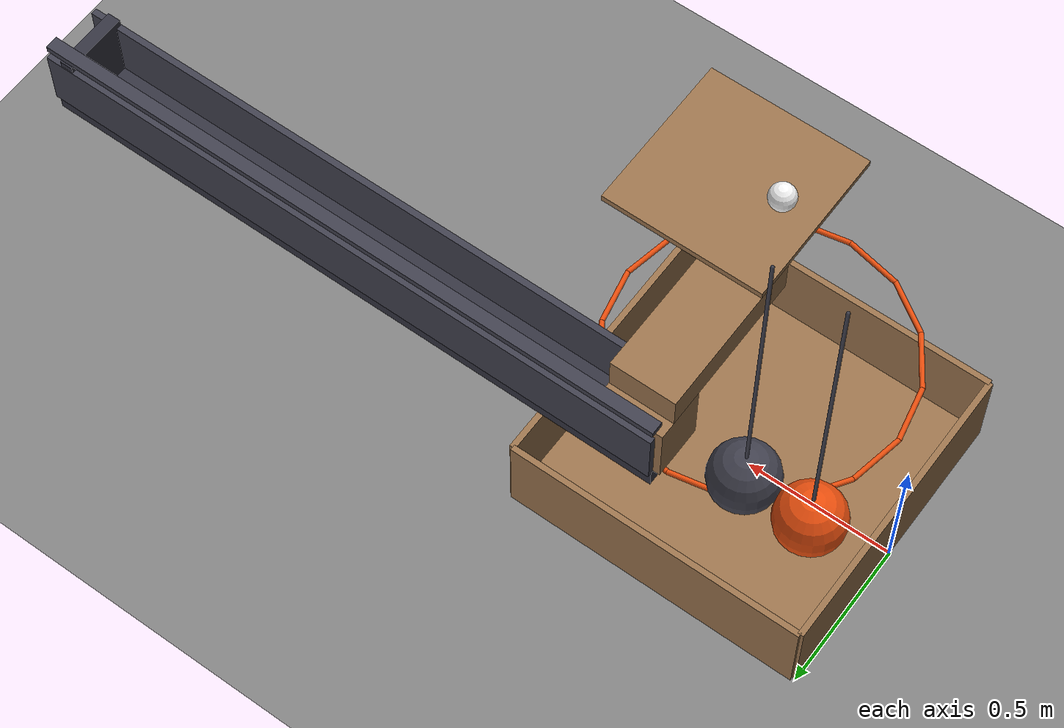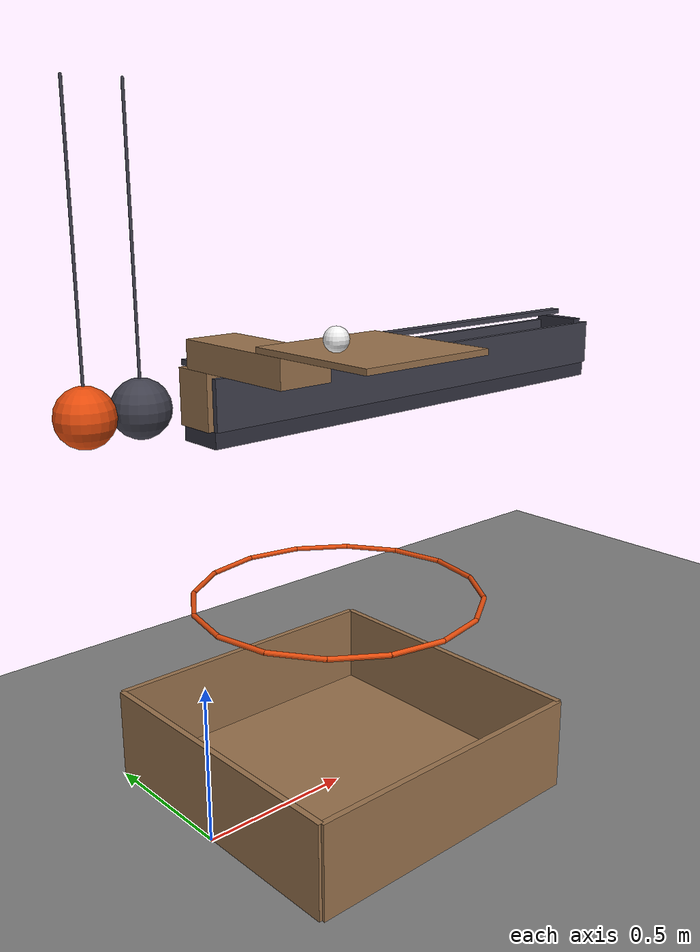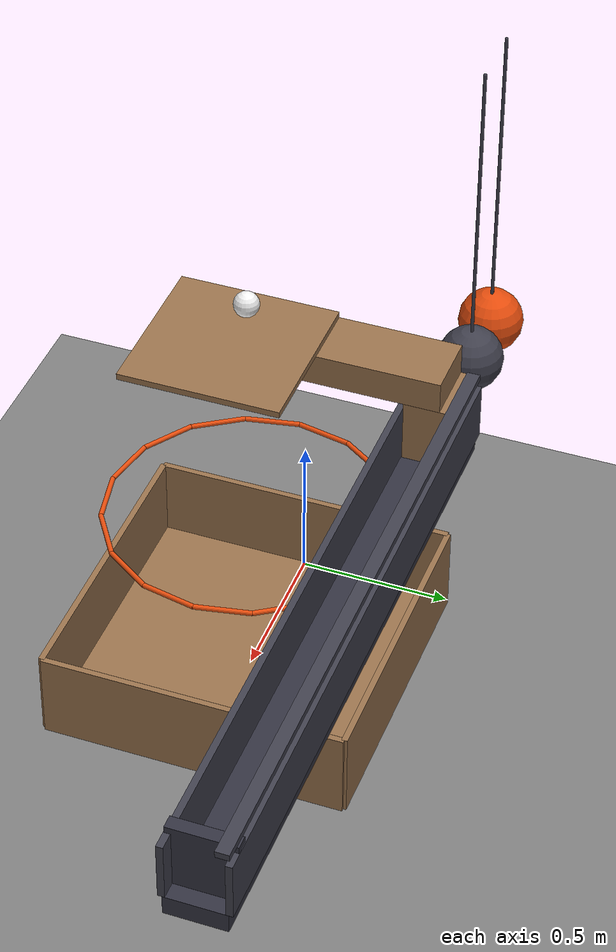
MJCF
<mujoco model="pendulums_withdraw_a_flap_support">
  <compiler angle="radian"/>
  <option timestep="0.002"/>
  <worldbody>
    <geom name="floor" type="plane" size="6 6 0.1" friction="0.8 0.005 0.002"/>
    <body name="pend1" pos="0 0.6 2.2">
      <joint name="pend1_hinge" type="hinge" pos="0 0 0" axis="0 1 0" damping="0.005"/>
      <geom name="pend1" type="sphere" pos="0 0 -1" size="0.1" mass="4" friction="0.15 0.005 0.0001" solref="0.01 0.2" rgba="0.9 0.3 0.05 1"/>
      <geom name="first rod" type="capsule" size="0.005" fromto="0 0 0 0 0 -0.9" mass="0.02" contype="0" conaffinity="0" rgba="0.25 0.25 0.3 1"/>
    </body>
    <body name="pend2" pos="0.2 0.6 2.2">
      <joint name="pend2_hinge" type="hinge" pos="0 0 0" axis="0 1 0" damping="0.005"/>
      <geom name="pend2" type="sphere" pos="0 0 -1" size="0.1" mass="2" friction="0.15 0.005 0.0001" solref="0.01 0.2" rgba="0.25 0.25 0.3 1"/>
      <geom name="second rod" type="capsule" size="0.005" fromto="0 0 0 0 0 -0.9" mass="0.02" contype="0" conaffinity="0" rgba="0.25 0.25 0.3 1"/>
    </body>
    <body name="track">
      <geom name="track" type="box" pos="1.42 0.6 1.07" size="1 0.09 0.03" friction="0.01 0.005 0.0001" rgba="0.2 0.2 0.25 1"/>
    </body>
    <body name="left guide">
      <geom name="left guide" type="box" pos="1.42 0.692 1.19" size="1 0.01 0.09" friction="0.01 0.005 0.0001" rgba="0.25 0.25 0.3 1"/>
    </body>
    <body name="right guide">
      <geom name="right guide" type="box" pos="1.42 0.508 1.19" size="1 0.01 0.09" friction="0.01 0.005 0.0001" rgba="0.25 0.25 0.3 1"/>
    </body>
    <body name="retaining lip">
      <geom name="retaining lip" type="box" pos="1.42 0.675 1.312" size="1 0.02 0.01" friction="0.01 0.005 0.0001" rgba="0.25 0.25 0.3 1"/>
    </body>
    <body name="cart" pos="0.5 0.6 1.2">
      <freejoint/>
      <geom name="cart" type="box" pos="0 0 0" size="0.1 0.08 0.1" mass="0.7" friction="0.015 0.005 0.0001" solref="0.01 1" rgba="0.6 0.45 0.3 1"/>
      <geom name="cart support" type="box" pos="0 -0.22 0.15" size="0.1 0.25 0.05" mass="0.1" friction="0.015 0.005 0.0001" solref="0.01 1" rgba="0.6 0.45 0.3 1"/>
    </body>
    <body name="cart end stop">
      <geom name="cart end stop" type="box" pos="2.35 0.6 1.2" size="0.02 0.1 0.1" friction="0.4 0.005 0.0001" solref="0.01 1" rgba="0.2 0.2 0.25 1"/>
    </body>
    <body name="flap" pos="0.9 0 1.41">
      <joint name="flap_hinge" type="hinge" pos="0 0 0" axis="0 1 0" limited="true" range="-1.48353 0" damping="0.015"/>
      <geom name="flap" type="box" pos="-0.25 0 0" size="0.25 0.25 0.01" mass="0.15" friction="0.03 0.005 0.0001" solref="0.01 1" rgba="0.6 0.45 0.3 1"/>
    </body>
    <body name="hoop">
      <geom name="hoop_00" type="capsule" size="0.008" fromto="0.968 0 0.65 0.933137 0.175269 0.65" rgba="0.9 0.3 0.05 1"/>
      <geom name="hoop_01" type="capsule" size="0.008" fromto="0.933137 0.175269 0.65 0.833855 0.323855 0.65" rgba="0.9 0.3 0.05 1"/>
      <geom name="hoop_02" type="capsule" size="0.008" fromto="0.833855 0.323855 0.65 0.685269 0.423137 0.65" rgba="0.9 0.3 0.05 1"/>
      <geom name="hoop_03" type="capsule" size="0.008" fromto="0.685269 0.423137 0.65 0.51 0.458 0.65" rgba="0.9 0.3 0.05 1"/>
      <geom name="hoop_04" type="capsule" size="0.008" fromto="0.51 0.458 0.65 0.334731 0.423137 0.65" rgba="0.9 0.3 0.05 1"/>
      <geom name="hoop_05" type="capsule" size="0.008" fromto="0.334731 0.423137 0.65 0.186145 0.323855 0.65" rgba="0.9 0.3 0.05 1"/>
      <geom name="hoop_06" type="capsule" size="0.008" fromto="0.186145 0.323855 0.65 0.0868632 0.175269 0.65" rgba="0.9 0.3 0.05 1"/>
      <geom name="hoop_07" type="capsule" size="0.008" fromto="0.0868632 0.175269 0.65 0.052 5.60888e-17 0.65" rgba="0.9 0.3 0.05 1"/>
      <geom name="hoop_08" type="capsule" size="0.008" fromto="0.052 5.60888e-17 0.65 0.0868632 -0.175269 0.65" rgba="0.9 0.3 0.05 1"/>
      <geom name="hoop_09" type="capsule" size="0.008" fromto="0.0868632 -0.175269 0.65 0.186145 -0.323855 0.65" rgba="0.9 0.3 0.05 1"/>
      <geom name="hoop_10" type="capsule" size="0.008" fromto="0.186145 -0.323855 0.65 0.334731 -0.423137 0.65" rgba="0.9 0.3 0.05 1"/>
      <geom name="hoop_11" type="capsule" size="0.008" fromto="0.334731 -0.423137 0.65 0.51 -0.458 0.65" rgba="0.9 0.3 0.05 1"/>
      <geom name="hoop_12" type="capsule" size="0.008" fromto="0.51 -0.458 0.65 0.685269 -0.423137 0.65" rgba="0.9 0.3 0.05 1"/>
      <geom name="hoop_13" type="capsule" size="0.008" fromto="0.685269 -0.423137 0.65 0.833855 -0.323855 0.65" rgba="0.9 0.3 0.05 1"/>
      <geom name="hoop_14" type="capsule" size="0.008" fromto="0.833855 -0.323855 0.65 0.933137 -0.175269 0.65" rgba="0.9 0.3 0.05 1"/>
      <geom name="hoop_15" type="capsule" size="0.008" fromto="0.933137 -0.175269 0.65 0.968 -1.12178e-16 0.65" rgba="0.9 0.3 0.05 1"/>
    </body>
    <body name="box">
      <geom name="box_base" type="box" pos="0.51 0 0.015" size="0.5 0.5 0.015" friction="0.9 0.02 0.01" solref="0.01 1" rgba="0.6 0.45 0.3 1"/>
      <geom name="box_near_wall" type="box" pos="0.01 0 0.15" size="0.01 0.5 0.15" friction="0.9 0.02 0.01" solref="0.01 1" rgba="0.6 0.45 0.3 1"/>
      <geom name="box_far_wall" type="box" pos="1.01 0 0.15" size="0.01 0.5 0.15" friction="0.9 0.02 0.01" solref="0.01 1" rgba="0.6 0.45 0.3 1"/>
      <geom name="box_left_wall" type="box" pos="0.51 0.5 0.15" size="0.5 0.01 0.15" friction="0.9 0.02 0.01" solref="0.01 1" rgba="0.6 0.45 0.3 1"/>
      <geom name="box_right_wall" type="box" pos="0.51 -0.5 0.15" size="0.5 0.01 0.15" friction="0.9 0.02 0.01" solref="0.01 1" rgba="0.6 0.45 0.3 1"/>
    </body>
    <body name="ball" pos="0.51 0 1.46">
      <freejoint/>
      <geom name="ball" type="sphere" pos="0 0 0" size="0.04" mass="0.06" condim="6" friction="0.6 0.02 0.01" solref="0.01 1" rgba="0.95 0.95 0.95 1"/>
    </body>
  </worldbody>
  <keyframe>
    <key name="start" qpos="1.2661 0 0.5 0.6 1.2 1 0 0 0 0 0.51 0 1.46 1 0 0 0" qvel="0 0 0 0 0 0 0 0 0 0 0 0 0 0 0"/>
  </keyframe>
</mujoco>
